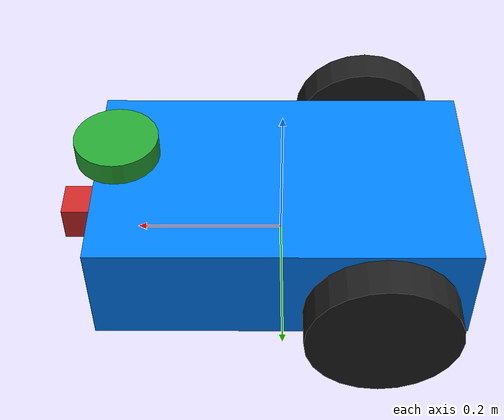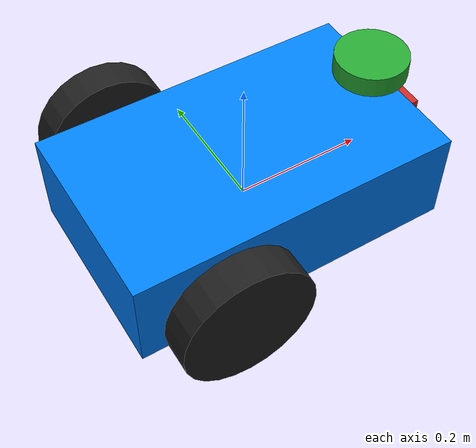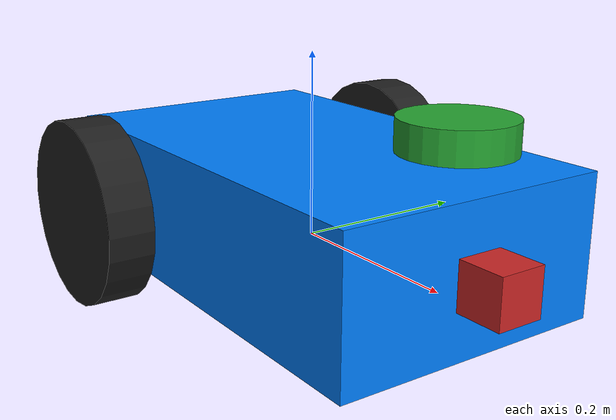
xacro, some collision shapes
<?xml version='1.0'?>
<robot name="my_first_robot" xmlns:xacro="http://www.ros.org/wiki/xacro">
  <xacro:include filename="$(find mybot)/urdf/my_robot.gazebo" />

  <!-- gazebo setting -->
  <gazebo reference="base_link">
    <material>Gazebo/Blue</material>
    <pose>0 0 0 0 0 0</pose>
  </gazebo>

  <gazebo reference="right_wheel">
    <material>Gazebo/Black</material>
    <pose>0 0 0 0 0 0</pose>
  </gazebo>

  <gazebo reference="left_wheel">
    <material>Gazebo/Black</material>
    <pose>0 0 0 0 0 0</pose>
  </gazebo>

  <gazebo reference="base_scan">
    <material>Gazebo/Green</material>
    <pose>0 0 0 0 0 0</pose>
  </gazebo>

  <gazebo reference="camera">
    <material>Gazebo/Red</material>
  </gazebo>

  <!-- Base Footprint -->
  <link name = "base_footprint"/>
  <!-- Base Link -->
  <link name="base_link">
    <visual>
      <origin xyz="0 0 0" rpy="0 0 0" />
      <geometry>
          <box size="0.5 0.3 0.15"/>
      </geometry>
      <material name="blue">
        <color rgba="0 0.5 1 1"/>
      </material>
    </visual>
    <!-- Base collision, mass and inertia -->
    <collision>
      <origin xyz="0 0 0" rpy="0 0 0" />
      <geometry>
          <box size="0.5 0.3 0.15"/>
      </geometry>
    </collision>
    <inertial>
      <mass value="5"/>
      <inertia ixx="0.13" ixy="0.0" ixz="0.0" iyy="0.21" iyz="0.0" izz="0.13"/>
    </inertial>
    <!-- Caster -->
    <visual name="caster">
      <origin xyz="0.2 0 -0.075" rpy="0 0 0" />
      <geometry>
        <sphere radius="0.025" />
      </geometry>
      <material name="red">
        <color rgba="1 0 0 1"/>
      </material>
    </visual>
    <!-- Caster collision, mass and inertia -->
    <collision>
      <origin xyz="0.2 0 0" rpy="0 0 0" />
      <geometry>
        <sphere radius="0.05" />
      </geometry>
    </collision>
    <inertial>
      <mass value="0.5"/>
      <inertia ixx="0.0001" ixy="0.0" ixz="0.0" iyy="0.0001" iyz="0.0" izz="0.0001"/>
    </inertial>
  </link>

  <!-- Right Wheel -->
  <link name="right_wheel">
    <inertial>
      <mass value="5"/>
      <origin xyz="0 0 0" rpy="0 1.5707 1.5707"/>
      <inertia
        ixx="0.1" ixy="0.0" ixz="0.0"
        iyy="0.1" iyz="0.0"
        izz="0.1"
      />
    </inertial>

    <collision>
      <origin xyz="0 0 0" rpy="0 1.5707 1.5707"/>
      <geometry>
        <cylinder radius="0.1" length="0.05"/>
      </geometry>
    </collision>

    <visual>
      <origin xyz="0 0 0" rpy="0 1.5707 1.5707"/>
      <geometry>
        <cylinder radius="0.1" length="0.05"/>
      </geometry>
    </visual>
  </link>

  <!-- Left Wheel -->
  <link name="left_wheel">
    <inertial>
      <mass value="5"/>
      <origin xyz="0 0 0" rpy="0 1.5707 1.5707"/>
      <inertia
        ixx="0.1" ixy="0.0" ixz="0.0"
        iyy="0.1" iyz="0.0"
        izz="0.1"
      />
    </inertial>

    <collision>
      <origin xyz="0 0 0" rpy="0 1.5707 1.5707"/>
      <geometry>
        <cylinder radius="0.1" length="0.05"/>
      </geometry>
    </collision>

    <visual>
      <origin xyz="0 0 0" rpy="0 1.5707 1.5707"/>
      <geometry>
        <cylinder radius="0.1" length="0.05"/>
      </geometry>
    </visual>
  </link>

  <link name="camera">
    <inertial>
      <mass value="0.1"/>
      <origin xyz="0 0 0" rpy="0 0 0"/>
      <inertia
        ixx="1e-6" ixy="0.0" ixz="0.0"
        iyy="1e-6" iyz="0.0"
        izz="1e-6"
      />
    </inertial>

    <collision>
      <origin xyz="0 0 0" rpy="0 0 0"/>
      <geometry>
        <box size="0.05 0.05 0.05"/>
      </geometry>
    </collision>

    <visual>
      <origin xyz="0 0 0" rpy="0 0 0"/>
      <geometry>
        <box size="0.05 0.05 0.05"/>
      </geometry>
    </visual>
  </link>

<link name="base_scan">
    <visual>
      <origin xyz="0 0 0" rpy="0 0 0"/>
      <geometry>
        <mesh filename="package://mybot/meshes/sensors/lds.stl" scale="0.001 0.001 0.001"/>
      </geometry>
    </visual>

    <collision>
      <origin xyz="0.015 0 -0.0065" rpy="0 0 0"/>
      <geometry>
        <cylinder length="0.0315" radius="0.055"/>
      </geometry>
    </collision>

    <inertial>
      <mass value="0.114" />
      <origin xyz="0 0 0" />
      <inertia ixx="0.001" ixy="0.0" ixz="0.0"
               iyy="0.001" iyz="0.0"
               izz="0.001" />
    </inertial>
  </link>

  <!-- Joint between Base footprint and base_link -->
  <joint name = "base_footprint_fixed" type = "fixed">
    <origin xyz = "0 0 0.03" rpy = "0 0 0"/>
    <parent link = "base_footprint"/>
    <child link = "base_link"/>
  </joint>

  <!-- Right Wheel joint -->
  <joint name="joint_right_wheel" type="continuous">
    <parent link="base_link"/>
    <child link="right_wheel"/>
    <origin xyz="-0.125 -0.2 0" rpy="0 0 0"/>
    <axis xyz="0 1 0"/>
    <limit effort="10000" velocity="1000"/>
    <dynamics damping="1.0" friction="1.0"/>
  </joint>

  <!-- Left Wheel joint -->
  <joint name="joint_left_wheel" type="continuous">
    <parent link="base_link"/>
    <child link="left_wheel"/>
    <origin xyz="-0.125 0.2 0" rpy="0 0 0" />
    <axis xyz="0 1 0" />
    <limit effort="10000" velocity="1000"/>
    <dynamics damping="1.0" friction="1.0"/>
  </joint>

  <joint name="camera_joint" type="fixed">
    <origin xyz="0.275 0 0" rpy="0 0 0" />
    <parent link="base_link"/>
    <child link="camera" />
    <axis xyz="0 1 0"/>
  </joint>

  <joint name="base_scan" type="fixed">
    <origin xyz="0.2 0 0.13" rpy="0 0 0" />
    <parent link="base_link"/>
    <child link="base_scan" />
    <axis xyz="0 1 0"/>
  </joint>

</robot>
